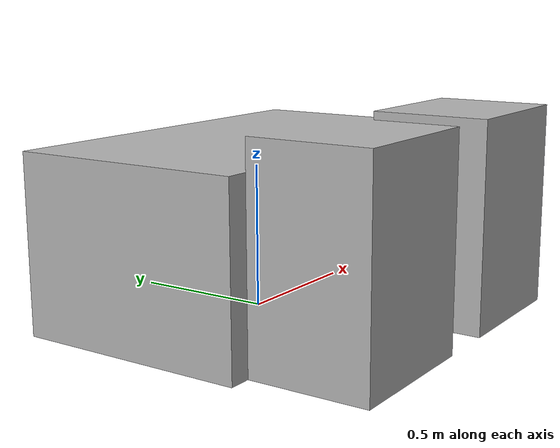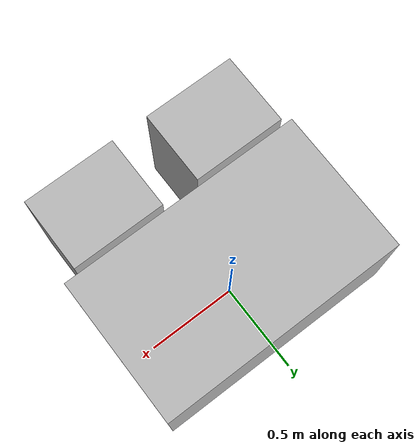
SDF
<?xml version='1.0'?>
<sdf version="1.5">

  <model name="chairs_and_table">
    <static>true</static>
    <link name="link">

      <inertial>
        <mass>30.0</mass>
        <inertia>
          <ixx>1.0</ixx>       <!-- for a box: ixx = 0.083 * mass * (y*y + z*z) -->
          <ixy>0.0</ixy>       <!-- for a box: ixy = 0 -->
          <ixz>0.0</ixz>       <!-- for a box: ixz = 0 -->
          <iyy>1.0</iyy>       <!-- for a box: iyy = 0.083 * mass * (x*x + z*z) -->
          <iyz>0.0</iyz>       <!-- for a box: iyz = 0 -->
          <izz>1.0</izz>      <!-- for a box: izz = 0.083 * mass * (x*x + y*y) -->
        </inertia>
      </inertial>

      <collision name="collision">
        <geometry>
          <mesh>
            <uri>model://chairs_and_table/chairs_and_table_collision.dae</uri>
          </mesh>
        </geometry>
      </collision>

      <visual name="visual">
        <geometry>
          <mesh>
            <uri>model://chairs_and_table/chairs_and_table.dae</uri>
          </mesh>
        </geometry>
      </visual>

    </link>
  </model>

</sdf>
